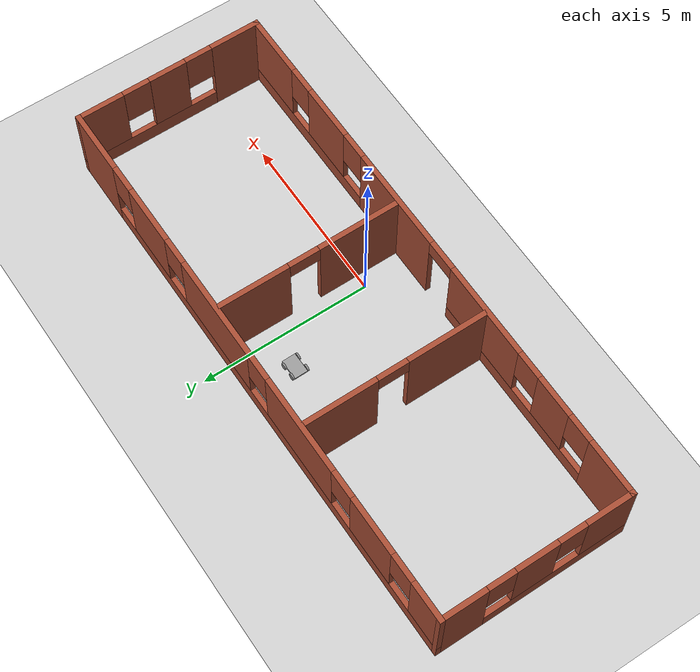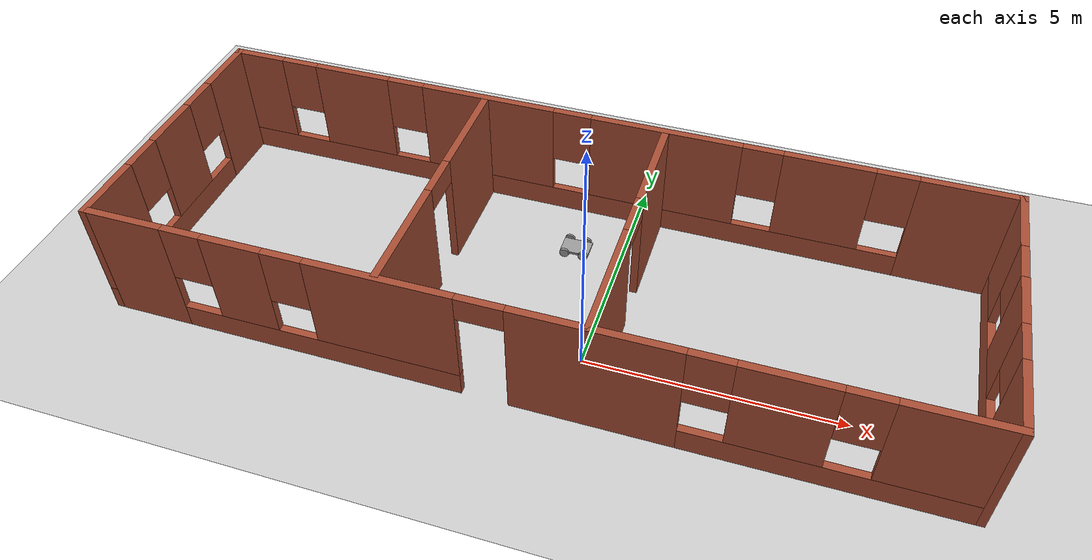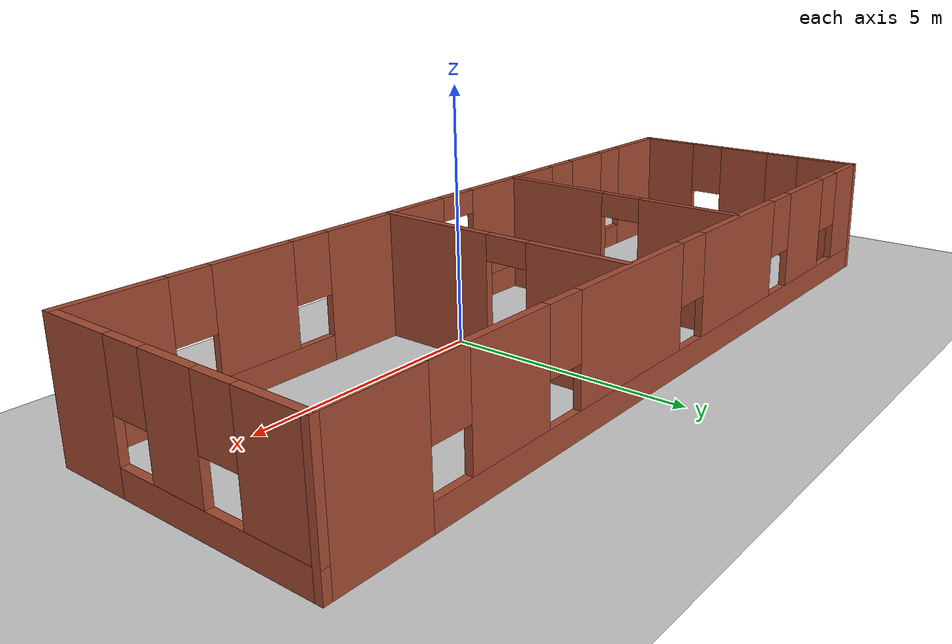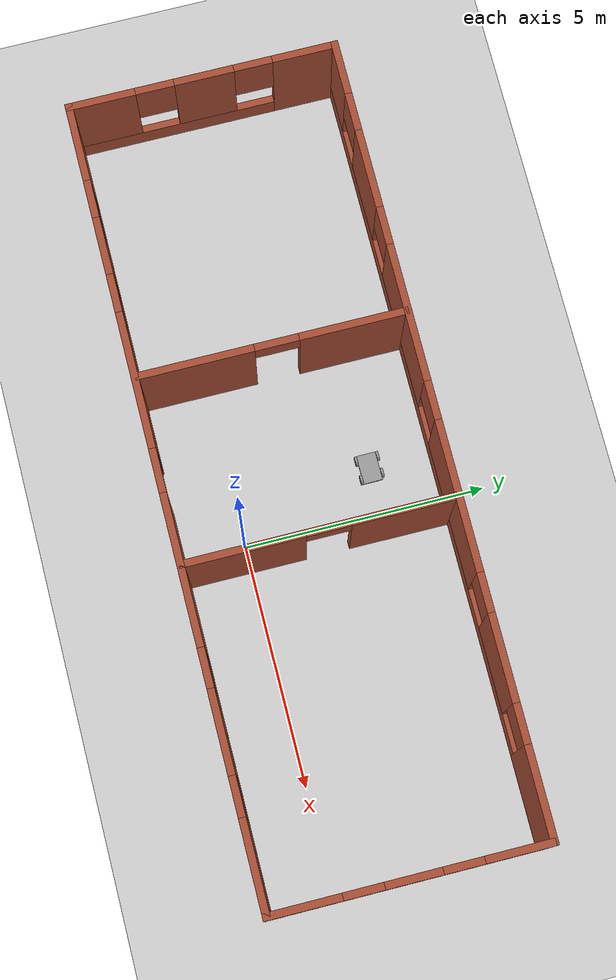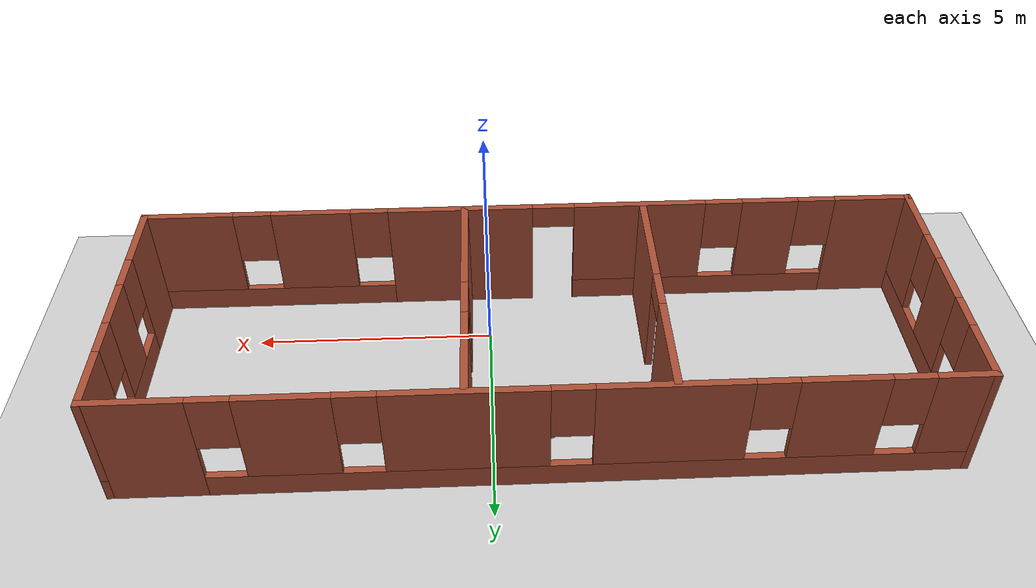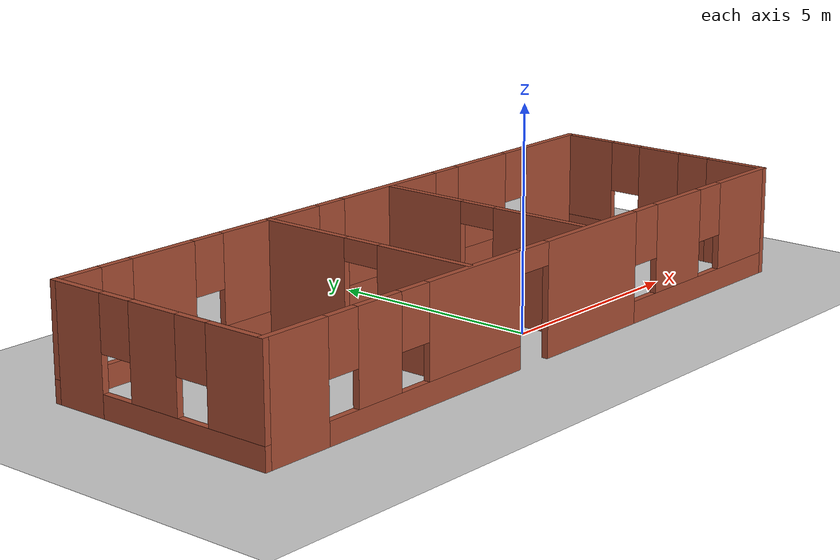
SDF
<sdf version="1.6">
 <world name="default">
  <model name="ground_plane">
   <static>1</static>
   <link name="link">
    <collision name="collision">
     <geometry><plane><normal>0 0 1</normal><size>100 100</size></plane></geometry>
     <surface>
      <contact><collide_bitmask>65535</collide_bitmask></contact>
      <friction><ode><mu>100</mu><mu2>50</mu2></ode></friction>
     </surface>
    </collision>
    <visual name="visual">
     <cast_shadows>0</cast_shadows>
     <geometry><plane><normal>0 0 1</normal><size>100 100</size></plane></geometry>
     <material>
      <script><uri>file://media/materials/scripts/gazebo.material</uri><name>Gazebo/Grey</name></script>
     </material>
    </visual>
   </link>
  </model>
  <model name="Building">
   <pose>-0.93772 1.4252 0 0 -0 0</pose>
   <link name="Wall_1">
    <pose>-8.175 0 0 0 -0 -1.5708</pose>
    <visual name="Wall_1_Visual_0">
     <pose>-2.13501 0 1.25 0 -0 0</pose>
     <geometry><box><size>1.38308 0.15 2.5</size></box></geometry>
     <material>
      <script><uri>file://media/materials/scripts/gazebo.material</uri><name>Gazebo/Bricks</name></script>
      <ambient>0.996078 0.47451 0.0196078 1</ambient>
     </material>
     <meta><layer>0</layer></meta>
    </visual>
    <collision name="Wall_1_Collision_0">
     <geometry><box><size>1.38308 0.15 2.5</size></box></geometry>
     <pose>-2.13501 0 1.25 0 -0 0</pose>
    </collision>
    <visual name="Wall_1_Visual_1">
     <pose>0.691537 0 0.25 0 -0 0</pose>
     <geometry><box><size>4.27001 0.15 0.5</size></box></geometry>
     <material>
      <script><uri>file://media/materials/scripts/gazebo.material</uri><name>Gazebo/Bricks</name></script>
      <ambient>0.996078 0.47451 0.0196078 1</ambient>
     </material>
     <meta><layer>0</layer></meta>
    </visual>
    <collision name="Wall_1_Collision_1">
     <geometry><box><size>4.27001 0.15 0.5</size></box></geometry>
     <pose>0.691537 0 0.25 0 -0 0</pose>
    </collision>
    <visual name="Wall_1_Visual_2">
     <pose>-0.025723 0 1.5 0 -0 0</pose>
     <geometry><box><size>1.23549 0.15 2</size></box></geometry>
     <material>
      <script><uri>file://media/materials/scripts/gazebo.material</uri><name>Gazebo/Bricks</name></script>
      <ambient>0.996078 0.47451 0.0196078 1</ambient>
     </material>
     <meta><layer>0</layer></meta>
    </visual>
    <collision name="Wall_1_Collision_2">
     <geometry><box><size>1.23549 0.15 2</size></box></geometry>
     <pose>-0.025723 0 1.5 0 -0 0</pose>
    </collision>
    <visual name="Wall_1_Visual_3">
     <pose>2.10928 0 1.5 0 -0 0</pose>
     <geometry><box><size>1.43452 0.15 2</size></box></geometry>
     <material>
      <script><uri>file://media/materials/scripts/gazebo.material</uri><name>Gazebo/Bricks</name></script>
      <ambient>0.996078 0.47451 0.0196078 1</ambient>
     </material>
     <meta><layer>0</layer></meta>
    </visual>
    <collision name="Wall_1_Collision_3">
     <geometry><box><size>1.43452 0.15 2</size></box></geometry>
     <pose>2.10928 0 1.5 0 -0 0</pose>
    </collision>
    <visual name="Wall_1_Visual_4">
     <pose>-1.04347 0 1.9 0 -0 0</pose>
     <geometry><box><size>0.8 0.15 1.2</size></box></geometry>
     <material>
      <script><uri>file://media/materials/scripts/gazebo.material</uri><name>Gazebo/Bricks</name></script>
      <ambient>0.996078 0.47451 0.0196078 1</ambient>
     </material>
     <meta><layer>0</layer></meta>
    </visual>
    <collision name="Wall_1_Collision_4">
     <geometry><box><size>0.8 0.15 1.2</size></box></geometry>
     <pose>-1.04347 0 1.9 0 -0 0</pose>
    </collision>
    <visual name="Wall_1_Visual_5">
     <pose>0.992024 0 1.9 0 -0 0</pose>
     <geometry><box><size>0.8 0.15 1.2</size></box></geometry>
     <material>
      <script><uri>file://media/materials/scripts/gazebo.material</uri><name>Gazebo/Bricks</name></script>
      <ambient>0.996078 0.47451 0.0196078 1</ambient>
     </material>
     <meta><layer>0</layer></meta>
    </visual>
    <collision name="Wall_1_Collision_5">
     <geometry><box><size>0.8 0.15 1.2</size></box></geometry>
     <pose>0.992024 0 1.9 0 -0 0</pose>
    </collision>
   </link>
   <link name="Wall_19">
    <pose>-2.40825 0.010743 0 0 -0 -1.5708</pose>
    <visual name="Wall_19_Visual_0">
     <pose>-1.64219 0 1.25 0 -0 0</pose>
     <geometry><box><size>2.21563 0.15 2.5</size></box></geometry>
     <material>
      <script><uri>file://media/materials/scripts/gazebo.material</uri><name>Gazebo/Bricks</name></script>
      <ambient>0.996078 0.47451 0.0196078 1</ambient>
     </material>
     <meta><layer>0</layer></meta>
    </visual>
    <collision name="Wall_19_Collision_0">
     <geometry><box><size>2.21563 0.15 2.5</size></box></geometry>
     <pose>-1.64219 0 1.25 0 -0 0</pose>
    </collision>
    <visual name="Wall_19_Visual_1">
     <pose>1.55781 0 1.25 0 -0 0</pose>
     <geometry><box><size>2.38437 0.15 2.5</size></box></geometry>
     <material>
      <script><uri>file://media/materials/scripts/gazebo.material</uri><name>Gazebo/Bricks</name></script>
      <ambient>0.996078 0.47451 0.0196078 1</ambient>
     </material>
     <meta><layer>0</layer></meta>
    </visual>
    <collision name="Wall_19_Collision_1">
     <geometry><box><size>2.38437 0.15 2.5</size></box></geometry>
     <pose>1.55781 0 1.25 0 -0 0</pose>
    </collision>
    <visual name="Wall_19_Visual_2">
     <pose>-0.084372 0 2.25 0 -0 0</pose>
     <geometry><box><size>0.9 0.15 0.5</size></box></geometry>
     <material>
      <script><uri>file://media/materials/scripts/gazebo.material</uri><name>Gazebo/Bricks</name></script>
      <ambient>0.996078 0.47451 0.0196078 1</ambient>
     </material>
     <meta><layer>0</layer></meta>
    </visual>
    <collision name="Wall_19_Collision_2">
     <geometry><box><size>0.9 0.15 0.5</size></box></geometry>
     <pose>-0.084372 0 2.25 0 -0 0</pose>
    </collision>
   </link>
   <link name="Wall_2">
    <pose>0 -2.75152 0 0 -0 0</pose>
    <visual name="Wall_2_Visual_0">
     <pose>-7.41427 0 1.25 0 -0 0</pose>
     <geometry><box><size>1.67146 0.15 2.5</size></box></geometry>
     <material>
      <script><uri>file://media/materials/scripts/gazebo.material</uri><name>Gazebo/Bricks</name></script>
      <ambient>0.996078 0.47451 0.0196078 1</ambient>
     </material>
     <meta><layer>0</layer></meta>
    </visual>
    <collision name="Wall_2_Collision_0">
     <geometry><box><size>1.67146 0.15 2.5</size></box></geometry>
     <pose>-7.41427 0 1.25 0 -0 0</pose>
    </collision>
    <visual name="Wall_2_Visual_1">
     <pose>1.50269 0 1.25 0 -0 0</pose>
     <geometry><box><size>3.0822 0.15 2.5</size></box></geometry>
     <material>
      <script><uri>file://media/materials/scripts/gazebo.material</uri><name>Gazebo/Bricks</name></script>
      <ambient>0.996078 0.47451 0.0196078 1</ambient>
     </material>
     <meta><layer>0</layer></meta>
    </visual>
    <collision name="Wall_2_Collision_1">
     <geometry><box><size>3.0822 0.15 2.5</size></box></geometry>
     <pose>1.50269 0 1.25 0 -0 0</pose>
    </collision>
    <visual name="Wall_2_Visual_2">
     <pose>-3.75847 0 0.25 0 -0 0</pose>
     <geometry><box><size>5.64013 0.15 0.5</size></box></geometry>
     <material>
      <script><uri>file://media/materials/scripts/gazebo.material</uri><name>Gazebo/Bricks</name></script>
      <ambient>0.996078 0.47451 0.0196078 1</ambient>
     </material>
     <meta><layer>0</layer></meta>
    </visual>
    <collision name="Wall_2_Collision_2">
     <geometry><box><size>5.64013 0.15 0.5</size></box></geometry>
     <pose>-3.75847 0 0.25 0 -0 0</pose>
    </collision>
    <visual name="Wall_2_Visual_3">
     <pose>5.6469 0 0.25 0 -0 0</pose>
     <geometry><box><size>5.20621 0.15 0.5</size></box></geometry>
     <material>
      <script><uri>file://media/materials/scripts/gazebo.material</uri><name>Gazebo/Bricks</name></script>
      <ambient>0.996078 0.47451 0.0196078 1</ambient>
     </material>
     <meta><layer>0</layer></meta>
    </visual>
    <collision name="Wall_2_Collision_3">
     <geometry><box><size>5.20621 0.15 0.5</size></box></geometry>
     <pose>5.6469 0 0.25 0 -0 0</pose>
    </collision>
    <visual name="Wall_2_Visual_4">
     <pose>-5.17236 0 1.5 0 -0 0</pose>
     <geometry><box><size>1.21236 0.15 2</size></box></geometry>
     <material>
      <script><uri>file://media/materials/scripts/gazebo.material</uri><name>Gazebo/Bricks</name></script>
      <ambient>0.996078 0.47451 0.0196078 1</ambient>
     </material>
     <meta><layer>0</layer></meta>
    </visual>
    <collision name="Wall_2_Collision_4">
     <geometry><box><size>1.21236 0.15 2</size></box></geometry>
     <pose>-5.17236 0 1.5 0 -0 0</pose>
    </collision>
    <visual name="Wall_2_Visual_5">
     <pose>-2.35229 0 1.5 0 -0 0</pose>
     <geometry><box><size>2.82777 0.15 2</size></box></geometry>
     <material>
      <script><uri>file://media/materials/scripts/gazebo.material</uri><name>Gazebo/Bricks</name></script>
      <ambient>0.996078 0.47451 0.0196078 1</ambient>
     </material>
     <meta><layer>0</layer></meta>
    </visual>
    <collision name="Wall_2_Collision_5">
     <geometry><box><size>2.82777 0.15 2</size></box></geometry>
     <pose>-2.35229 0 1.5 0 -0 0</pose>
    </collision>
    <visual name="Wall_2_Visual_6">
     <pose>-2.35229 0 1.5 0 -0 0</pose>
     <geometry><box><size>2.82777 0.15 2</size></box></geometry>
     <material>
      <script><uri>file://media/materials/scripts/gazebo.material</uri><name>Gazebo/Bricks</name></script>
      <ambient>0.996078 0.47451 0.0196078 1</ambient>
     </material>
     <meta><layer>0</layer></meta>
    </visual>
    <collision name="Wall_2_Collision_6">
     <geometry><box><size>2.82777 0.15 2</size></box></geometry>
     <pose>-2.35229 0 1.5 0 -0 0</pose>
    </collision>
    <visual name="Wall_2_Visual_7">
     <pose>4.68128 0 1.5 0 -0 0</pose>
     <geometry><box><size>1.67498 0.15 2</size></box></geometry>
     <material>
      <script><uri>file://media/materials/scripts/gazebo.material</uri><name>Gazebo/Bricks</name></script>
      <ambient>0.996078 0.47451 0.0196078 1</ambient>
     </material>
     <meta><layer>0</layer></meta>
    </visual>
    <collision name="Wall_2_Collision_7">
     <geometry><box><size>1.67498 0.15 2</size></box></geometry>
     <pose>4.68128 0 1.5 0 -0 0</pose>
    </collision>
    <visual name="Wall_2_Visual_8">
     <pose>7.28438 0 1.5 0 -0 0</pose>
     <geometry><box><size>1.93123 0.15 2</size></box></geometry>
     <material>
      <script><uri>file://media/materials/scripts/gazebo.material</uri><name>Gazebo/Bricks</name></script>
      <ambient>0.996078 0.47451 0.0196078 1</ambient>
     </material>
     <meta><layer>0</layer></meta>
    </visual>
    <collision name="Wall_2_Collision_8">
     <geometry><box><size>1.93123 0.15 2</size></box></geometry>
     <pose>7.28438 0 1.5 0 -0 0</pose>
    </collision>
    <visual name="Wall_2_Visual_9">
     <pose>-6.17854 0 1.9 0 -0 0</pose>
     <geometry><box><size>0.8 0.15 1.2</size></box></geometry>
     <material>
      <script><uri>file://media/materials/scripts/gazebo.material</uri><name>Gazebo/Bricks</name></script>
      <ambient>0.996078 0.47451 0.0196078 1</ambient>
     </material>
     <meta><layer>0</layer></meta>
    </visual>
    <collision name="Wall_2_Collision_9">
     <geometry><box><size>0.8 0.15 1.2</size></box></geometry>
     <pose>-6.17854 0 1.9 0 -0 0</pose>
    </collision>
    <visual name="Wall_2_Visual_10">
     <pose>3.44379 0 1.9 0 -0 0</pose>
     <geometry><box><size>0.8 0.15 1.2</size></box></geometry>
     <material>
      <script><uri>file://media/materials/scripts/gazebo.material</uri><name>Gazebo/Bricks</name></script>
      <ambient>0.996078 0.47451 0.0196078 1</ambient>
     </material>
     <meta><layer>0</layer></meta>
    </visual>
    <collision name="Wall_2_Collision_10">
     <geometry><box><size>0.8 0.15 1.2</size></box></geometry>
     <pose>3.44379 0 1.9 0 -0 0</pose>
    </collision>
    <visual name="Wall_2_Visual_11">
     <pose>-4.16618 0 1.9 0 -0 0</pose>
     <geometry><box><size>0.8 0.15 1.2</size></box></geometry>
     <material>
      <script><uri>file://media/materials/scripts/gazebo.material</uri><name>Gazebo/Bricks</name></script>
      <ambient>0.996078 0.47451 0.0196078 1</ambient>
     </material>
     <meta><layer>0</layer></meta>
    </visual>
    <collision name="Wall_2_Collision_11">
     <geometry><box><size>0.8 0.15 1.2</size></box></geometry>
     <pose>-4.16618 0 1.9 0 -0 0</pose>
    </collision>
    <visual name="Wall_2_Visual_12">
     <pose>5.91877 0 1.9 0 -0 0</pose>
     <geometry><box><size>0.8 0.15 1.2</size></box></geometry>
     <material>
      <script><uri>file://media/materials/scripts/gazebo.material</uri><name>Gazebo/Bricks</name></script>
      <ambient>0.996078 0.47451 0.0196078 1</ambient>
     </material>
     <meta><layer>0</layer></meta>
    </visual>
    <collision name="Wall_2_Collision_12">
     <geometry><box><size>0.8 0.15 1.2</size></box></geometry>
     <pose>5.91877 0 1.9 0 -0 0</pose>
    </collision>
    <visual name="Wall_2_Visual_13">
     <pose>-0.488409 0 2.25 0 -0 0</pose>
     <geometry><box><size>0.9 0.15 0.5</size></box></geometry>
     <material>
      <script><uri>file://media/materials/scripts/gazebo.material</uri><name>Gazebo/Bricks</name></script>
      <ambient>0.996078 0.47451 0.0196078 1</ambient>
     </material>
     <meta><layer>0</layer></meta>
    </visual>
    <collision name="Wall_2_Collision_13">
     <geometry><box><size>0.9 0.15 0.5</size></box></geometry>
     <pose>-0.488409 0 2.25 0 -0 0</pose>
    </collision>
    <visual name="Wall_2_Visual_14">
     <pose>-0.488409 0 2.25 0 -0 0</pose>
     <geometry><box><size>0.9 0.15 0.5</size></box></geometry>
     <material>
      <script><uri>file://media/materials/scripts/gazebo.material</uri><name>Gazebo/Bricks</name></script>
      <ambient>0.996078 0.47451 0.0196078 1</ambient>
     </material>
     <meta><layer>0</layer></meta>
    </visual>
    <collision name="Wall_2_Collision_14">
     <geometry><box><size>0.9 0.15 0.5</size></box></geometry>
     <pose>-0.488409 0 2.25 0 -0 0</pose>
    </collision>
   </link>
   <link name="Wall_22">
    <pose>1.4083 -0.035518 0 0 -0 -1.5708</pose>
    <visual name="Wall_22_Visual_0">
     <pose>-1.70001 0 1.25 0 -0 0</pose>
     <geometry><box><size>2.09998 0.15 2.5</size></box></geometry>
     <material>
      <script><uri>file://media/materials/scripts/gazebo.material</uri><name>Gazebo/Bricks</name></script>
      <ambient>0.996078 0.47451 0.0196078 1</ambient>
     </material>
     <meta><layer>0</layer></meta>
    </visual>
    <collision name="Wall_22_Collision_0">
     <geometry><box><size>2.09998 0.15 2.5</size></box></geometry>
     <pose>-1.70001 0 1.25 0 -0 0</pose>
    </collision>
    <visual name="Wall_22_Visual_1">
     <pose>1.49999 0 1.25 0 -0 0</pose>
     <geometry><box><size>2.50002 0.15 2.5</size></box></geometry>
     <material>
      <script><uri>file://media/materials/scripts/gazebo.material</uri><name>Gazebo/Bricks</name></script>
      <ambient>0.996078 0.47451 0.0196078 1</ambient>
     </material>
     <meta><layer>0</layer></meta>
    </visual>
    <collision name="Wall_22_Collision_1">
     <geometry><box><size>2.50002 0.15 2.5</size></box></geometry>
     <pose>1.49999 0 1.25 0 -0 0</pose>
    </collision>
    <visual name="Wall_22_Visual_2">
     <pose>-0.200025 0 2.25 0 -0 0</pose>
     <geometry><box><size>0.9 0.15 0.5</size></box></geometry>
     <material>
      <script><uri>file://media/materials/scripts/gazebo.material</uri><name>Gazebo/Bricks</name></script>
      <ambient>0.996078 0.47451 0.0196078 1</ambient>
     </material>
     <meta><layer>0</layer></meta>
    </visual>
    <collision name="Wall_22_Collision_2">
     <geometry><box><size>0.9 0.15 0.5</size></box></geometry>
     <pose>-0.200025 0 2.25 0 -0 0</pose>
    </collision>
   </link>
   <link name="Wall_3">
    <pose>8.175 0 0 0 -0 1.5708</pose>
    <visual name="Wall_3_Visual_0">
     <pose>-2.06302 0 1.25 0 -0 0</pose>
     <geometry><box><size>1.52704 0.15 2.5</size></box></geometry>
     <material>
      <script><uri>file://media/materials/scripts/gazebo.material</uri><name>Gazebo/Bricks</name></script>
      <ambient>0.996078 0.47451 0.0196078 1</ambient>
     </material>
     <meta><layer>0</layer></meta>
    </visual>
    <collision name="Wall_3_Collision_0">
     <geometry><box><size>1.52704 0.15 2.5</size></box></geometry>
     <pose>-2.06302 0 1.25 0 -0 0</pose>
    </collision>
    <visual name="Wall_3_Visual_1">
     <pose>0.763522 0 0.25 0 -0 0</pose>
     <geometry><box><size>4.12605 0.15 0.5</size></box></geometry>
     <material>
      <script><uri>file://media/materials/scripts/gazebo.material</uri><name>Gazebo/Bricks</name></script>
      <ambient>0.996078 0.47451 0.0196078 1</ambient>
     </material>
     <meta><layer>0</layer></meta>
    </visual>
    <collision name="Wall_3_Collision_1">
     <geometry><box><size>4.12605 0.15 0.5</size></box></geometry>
     <pose>0.763522 0 0.25 0 -0 0</pose>
    </collision>
    <visual name="Wall_3_Visual_2">
     <pose>0.060419 0 1.5 0 -0 0</pose>
     <geometry><box><size>1.11984 0.15 2</size></box></geometry>
     <material>
      <script><uri>file://media/materials/scripts/gazebo.material</uri><name>Gazebo/Bricks</name></script>
      <ambient>0.996078 0.47451 0.0196078 1</ambient>
     </material>
     <meta><layer>0</layer></meta>
    </visual>
    <collision name="Wall_3_Collision_2">
     <geometry><box><size>1.11984 0.15 2</size></box></geometry>
     <pose>0.060419 0 1.5 0 -0 0</pose>
    </collision>
    <visual name="Wall_3_Visual_3">
     <pose>2.12344 0 1.5 0 -0 0</pose>
     <geometry><box><size>1.40621 0.15 2</size></box></geometry>
     <material>
      <script><uri>file://media/materials/scripts/gazebo.material</uri><name>Gazebo/Bricks</name></script>
      <ambient>0.996078 0.47451 0.0196078 1</ambient>
     </material>
     <meta><layer>0</layer></meta>
    </visual>
    <collision name="Wall_3_Collision_3">
     <geometry><box><size>1.40621 0.15 2</size></box></geometry>
     <pose>2.12344 0 1.5 0 -0 0</pose>
    </collision>
    <visual name="Wall_3_Visual_4">
     <pose>-0.899501 0 1.9 0 -0 0</pose>
     <geometry><box><size>0.8 0.15 1.2</size></box></geometry>
     <material>
      <script><uri>file://media/materials/scripts/gazebo.material</uri><name>Gazebo/Bricks</name></script>
      <ambient>0.996078 0.47451 0.0196078 1</ambient>
     </material>
     <meta><layer>0</layer></meta>
    </visual>
    <collision name="Wall_3_Collision_4">
     <geometry><box><size>0.8 0.15 1.2</size></box></geometry>
     <pose>-0.899501 0 1.9 0 -0 0</pose>
    </collision>
    <visual name="Wall_3_Visual_5">
     <pose>1.02034 0 1.9 0 -0 0</pose>
     <geometry><box><size>0.8 0.15 1.2</size></box></geometry>
     <material>
      <script><uri>file://media/materials/scripts/gazebo.material</uri><name>Gazebo/Bricks</name></script>
      <ambient>0.996078 0.47451 0.0196078 1</ambient>
     </material>
     <meta><layer>0</layer></meta>
    </visual>
    <collision name="Wall_3_Collision_5">
     <geometry><box><size>0.8 0.15 1.2</size></box></geometry>
     <pose>1.02034 0 1.9 0 -0 0</pose>
    </collision>
   </link>
   <link name="Wall_4">
    <pose>0 2.75152 0 0 -0 3.14159</pose>
    <visual name="Wall_4_Visual_0">
     <pose>-7.28438 0 1.25 0 -0 0</pose>
     <geometry><box><size>1.93123 0.15 2.5</size></box></geometry>
     <material>
      <script><uri>file://media/materials/scripts/gazebo.material</uri><name>Gazebo/Bricks</name></script>
      <ambient>0.996078 0.47451 0.0196078 1</ambient>
     </material>
     <meta><layer>0</layer></meta>
    </visual>
    <collision name="Wall_4_Collision_0">
     <geometry><box><size>1.93123 0.15 2.5</size></box></geometry>
     <pose>-7.28438 0 1.25 0 -0 0</pose>
    </collision>
    <visual name="Wall_4_Visual_1">
     <pose>0.965616 0 0.25 0 -0 0</pose>
     <geometry><box><size>14.5688 0.15 0.5</size></box></geometry>
     <material>
      <script><uri>file://media/materials/scripts/gazebo.material</uri><name>Gazebo/Bricks</name></script>
      <ambient>0.996078 0.47451 0.0196078 1</ambient>
     </material>
     <meta><layer>0</layer></meta>
    </visual>
    <collision name="Wall_4_Collision_1">
     <geometry><box><size>14.5688 0.15 0.5</size></box></geometry>
     <pose>0.965616 0 0.25 0 -0 0</pose>
    </collision>
    <visual name="Wall_4_Visual_2">
     <pose>-4.63502 0 1.5 0 -0 0</pose>
     <geometry><box><size>1.7675 0.15 2</size></box></geometry>
     <material>
      <script><uri>file://media/materials/scripts/gazebo.material</uri><name>Gazebo/Bricks</name></script>
      <ambient>0.996078 0.47451 0.0196078 1</ambient>
     </material>
     <meta><layer>0</layer></meta>
    </visual>
    <collision name="Wall_4_Collision_2">
     <geometry><box><size>1.7675 0.15 2</size></box></geometry>
     <pose>-4.63502 0 1.5 0 -0 0</pose>
    </collision>
    <visual name="Wall_4_Visual_3">
     <pose>-1.4083 0 1.5 0 -0 0</pose>
     <geometry><box><size>3.08594 0.15 2</size></box></geometry>
     <material>
      <script><uri>file://media/materials/scripts/gazebo.material</uri><name>Gazebo/Bricks</name></script>
      <ambient>0.996078 0.47451 0.0196078 1</ambient>
     </material>
     <meta><layer>0</layer></meta>
    </visual>
    <collision name="Wall_4_Collision_3">
     <geometry><box><size>3.08594 0.15 2</size></box></geometry>
     <pose>-1.4083 0 1.5 0 -0 0</pose>
    </collision>
    <visual name="Wall_4_Visual_4">
     <pose>2.37355 0 1.5 0 -0 0</pose>
     <geometry><box><size>2.87777 0.15 2</size></box></geometry>
     <material>
      <script><uri>file://media/materials/scripts/gazebo.material</uri><name>Gazebo/Bricks</name></script>
      <ambient>0.996078 0.47451 0.0196078 1</ambient>
     </material>
     <meta><layer>0</layer></meta>
    </visual>
    <collision name="Wall_4_Collision_4">
     <geometry><box><size>2.87777 0.15 2</size></box></geometry>
     <pose>2.37355 0 1.5 0 -0 0</pose>
    </collision>
    <visual name="Wall_4_Visual_5">
     <pose>5.44993 0 1.5 0 -0 0</pose>
     <geometry><box><size>1.67498 0.15 2</size></box></geometry>
     <material>
      <script><uri>file://media/materials/scripts/gazebo.material</uri><name>Gazebo/Bricks</name></script>
      <ambient>0.996078 0.47451 0.0196078 1</ambient>
     </material>
     <meta><layer>0</layer></meta>
    </visual>
    <collision name="Wall_4_Collision_5">
     <geometry><box><size>1.67498 0.15 2</size></box></geometry>
     <pose>5.44993 0 1.5 0 -0 0</pose>
    </collision>
    <visual name="Wall_4_Visual_6">
     <pose>7.66871 0 1.5 0 -0 0</pose>
     <geometry><box><size>1.16259 0.15 2</size></box></geometry>
     <material>
      <script><uri>file://media/materials/scripts/gazebo.material</uri><name>Gazebo/Bricks</name></script>
      <ambient>0.996078 0.47451 0.0196078 1</ambient>
     </material>
     <meta><layer>0</layer></meta>
    </visual>
    <collision name="Wall_4_Collision_6">
     <geometry><box><size>1.16259 0.15 2</size></box></geometry>
     <pose>7.66871 0 1.5 0 -0 0</pose>
    </collision>
    <visual name="Wall_4_Visual_7">
     <pose>-5.91877 0 1.9 0 -0 0</pose>
     <geometry><box><size>0.8 0.15 1.2</size></box></geometry>
     <material>
      <script><uri>file://media/materials/scripts/gazebo.material</uri><name>Gazebo/Bricks</name></script>
      <ambient>0.996078 0.47451 0.0196078 1</ambient>
     </material>
     <meta><layer>0</layer></meta>
    </visual>
    <collision name="Wall_4_Collision_7">
     <geometry><box><size>0.8 0.15 1.2</size></box></geometry>
     <pose>-5.91877 0 1.9 0 -0 0</pose>
    </collision>
    <visual name="Wall_4_Visual_8">
     <pose>-3.35127 0 1.9 0 -0 0</pose>
     <geometry><box><size>0.8 0.15 1.2</size></box></geometry>
     <material>
      <script><uri>file://media/materials/scripts/gazebo.material</uri><name>Gazebo/Bricks</name></script>
      <ambient>0.996078 0.47451 0.0196078 1</ambient>
     </material>
     <meta><layer>0</layer></meta>
    </visual>
    <collision name="Wall_4_Collision_8">
     <geometry><box><size>0.8 0.15 1.2</size></box></geometry>
     <pose>-3.35127 0 1.9 0 -0 0</pose>
    </collision>
    <visual name="Wall_4_Visual_9">
     <pose>0.53467 0 1.9 0 -0 0</pose>
     <geometry><box><size>0.8 0.15 1.2</size></box></geometry>
     <material>
      <script><uri>file://media/materials/scripts/gazebo.material</uri><name>Gazebo/Bricks</name></script>
      <ambient>0.996078 0.47451 0.0196078 1</ambient>
     </material>
     <meta><layer>0</layer></meta>
    </visual>
    <collision name="Wall_4_Collision_9">
     <geometry><box><size>0.8 0.15 1.2</size></box></geometry>
     <pose>0.53467 0 1.9 0 -0 0</pose>
    </collision>
    <visual name="Wall_4_Visual_10">
     <pose>4.21244 0 1.9 0 -0 0</pose>
     <geometry><box><size>0.8 0.15 1.2</size></box></geometry>
     <material>
      <script><uri>file://media/materials/scripts/gazebo.material</uri><name>Gazebo/Bricks</name></script>
      <ambient>0.996078 0.47451 0.0196078 1</ambient>
     </material>
     <meta><layer>0</layer></meta>
    </visual>
    <collision name="Wall_4_Collision_10">
     <geometry><box><size>0.8 0.15 1.2</size></box></geometry>
     <pose>4.21244 0 1.9 0 -0 0</pose>
    </collision>
    <visual name="Wall_4_Visual_11">
     <pose>6.68741 0 1.9 0 -0 0</pose>
     <geometry><box><size>0.8 0.15 1.2</size></box></geometry>
     <material>
      <script><uri>file://media/materials/scripts/gazebo.material</uri><name>Gazebo/Bricks</name></script>
      <ambient>0.996078 0.47451 0.0196078 1</ambient>
     </material>
     <meta><layer>0</layer></meta>
    </visual>
    <collision name="Wall_4_Collision_11">
     <geometry><box><size>0.8 0.15 1.2</size></box></geometry>
     <pose>6.68741 0 1.9 0 -0 0</pose>
    </collision>
   </link>
   <static>1</static>
  </model>
  <model name="robot_clone">
   <link name="link_5">
    <inertial>
     <mass>1</mass>
     <inertia>
      <ixx>0.166667</ixx>
      <ixy>0</ixy>
      <ixz>0</ixz>
      <iyy>0.166667</iyy>
      <iyz>0</iyz>
      <izz>0.166667</izz>
     </inertia>
    </inertial>
    <pose>0.039875 -0.14612 -0.029 0 -0 0</pose>
    <visual name="visual">
     <geometry><box><size>0.6 0.4 0.05</size></box></geometry>
     <material>
      <lighting>1</lighting>
      <script><uri>file://media/materials/scripts/gazebo.material</uri><name>Gazebo/Grey</name></script>
      <shader type="pixel"><normal_map>__default__</normal_map></shader>
      <ambient>0.3 0.3 0.3 1</ambient>
      <diffuse>0.7 0.7 0.7 1</diffuse>
      <specular>0.01 0.01 0.01 1</specular>
      <emissive>0 0 0 1</emissive>
     </material>
    </visual>
    <collision name="collision">
     <geometry><box><size>0.6 0.4 0.05</size></box></geometry>
     <surface>
      <friction>
       <ode><mu>1</mu><mu2>1</mu2><fdir1>0 0 0</fdir1><slip1>0</slip1><slip2>0</slip2></ode>
       <torsional>
        <coefficient>1</coefficient>
        <patch_radius>0</patch_radius>
        <surface_radius>0</surface_radius>
        <use_patch_radius>1</use_patch_radius>
        <ode><slip>0</slip></ode>
       </torsional>
      </friction>
      <bounce><restitution_coefficient>0</restitution_coefficient><threshold>1e+06</threshold></bounce>
      <contact>
       <collide_without_contact>0</collide_without_contact>
       <collide_without_contact_bitmask>1</collide_without_contact_bitmask>
       <collide_bitmask>1</collide_bitmask>
       <ode>
        <soft_cfm>0</soft_cfm>
        <soft_erp>0.2</soft_erp>
        <kp>1e+13</kp>
        <kd>1</kd>
        <max_vel>0.01</max_vel>
        <min_depth>0</min_depth>
       </ode>
       <bullet>
        <split_impulse>1</split_impulse>
        <split_impulse_penetration_threshold>-0.01</split_impulse_penetration_threshold>
        <soft_cfm>0</soft_cfm>
        <soft_erp>0.2</soft_erp>
        <kp>1e+13</kp>
        <kd>1</kd>
       </bullet>
      </contact>
     </surface>
    </collision>
   </link>
   <link name="link_6">
    <inertial>
     <mass>1</mass>
     <inertia><ixx>0.145833</ixx><ixy>0</ixy><ixz>0</ixz><iyy>0.145833</iyy><iyz>0</iyz><izz>0.125</izz></inertia>
    </inertial>
    <pose>0.199875 0.078889 -0.029 0 -0 0</pose>
    <visual name="visual">
     <pose>0 0 0 1.5707 -0 0</pose>
     <geometry><cylinder><radius>0.1</radius><length>0.05</length></cylinder></geometry>
     <material>
      <lighting>1</lighting>
      <script><uri>file://media/materials/scripts/gazebo.material</uri><name>Gazebo/Grey</name></script>
      <shader type="pixel"><normal_map>__default__</normal_map></shader>
      <ambient>0.3 0.3 0.3 1</ambient>
      <diffuse>0.7 0.7 0.7 1</diffuse>
      <specular>0.01 0.01 0.01 1</specular>
      <emissive>0 0 0 1</emissive>
     </material>
    </visual>
    <collision name="collision">
     <pose>0 0 0 1.5707 -0 0</pose>
     <geometry><cylinder><radius>0.1</radius><length>0.05</length></cylinder></geometry>
     <surface>
      <friction>
       <ode><mu>1</mu><mu2>1</mu2><fdir1>0 0 0</fdir1><slip1>0</slip1><slip2>0</slip2></ode>
       <torsional>
        <coefficient>1</coefficient>
        <patch_radius>0</patch_radius>
        <surface_radius>0</surface_radius>
        <use_patch_radius>1</use_patch_radius>
        <ode><slip>0</slip></ode>
       </torsional>
      </friction>
      <bounce><restitution_coefficient>0</restitution_coefficient><threshold>1e+06</threshold></bounce>
      <contact>
       <collide_without_contact>0</collide_without_contact>
       <collide_without_contact_bitmask>1</collide_without_contact_bitmask>
       <collide_bitmask>1</collide_bitmask>
       <ode>
        <soft_cfm>0</soft_cfm>
        <soft_erp>0.2</soft_erp>
        <kp>1e+13</kp>
        <kd>1</kd>
        <max_vel>0.01</max_vel>
        <min_depth>0</min_depth>
       </ode>
       <bullet>
        <split_impulse>1</split_impulse>
        <split_impulse_penetration_threshold>-0.01</split_impulse_penetration_threshold>
        <soft_cfm>0</soft_cfm>
        <soft_erp>0.2</soft_erp>
        <kp>1e+13</kp>
        <kd>1</kd>
       </bullet>
      </contact>
     </surface>
    </collision>
   </link>
   <link name="link_6_clone">
    <inertial>
     <mass>1</mass>
     <inertia><ixx>0.145833</ixx><ixy>0</ixy><ixz>0</ixz><iyy>0.145833</iyy><iyz>0</iyz><izz>0.125</izz></inertia>
    </inertial>
    <pose>-0.160125 -0.371129 -0.029 0 -0 0</pose>
    <visual name="visual">
     <pose>0 0 0 1.5707 -0 0</pose>
     <geometry><cylinder><radius>0.1</radius><length>0.05</length></cylinder></geometry>
     <material>
      <lighting>1</lighting>
      <script><uri>file://media/materials/scripts/gazebo.material</uri><name>Gazebo/Grey</name></script>
      <shader type="pixel"><normal_map>__default__</normal_map></shader>
      <ambient>0.3 0.3 0.3 1</ambient>
      <diffuse>0.7 0.7 0.7 1</diffuse>
      <specular>0.01 0.01 0.01 1</specular>
      <emissive>0 0 0 1</emissive>
     </material>
    </visual>
    <collision name="collision">
     <pose>0 0 0 1.5707 -0 0</pose>
     <geometry><cylinder><radius>0.1</radius><length>0.05</length></cylinder></geometry>
     <surface>
      <friction>
       <ode><mu>1</mu><mu2>1</mu2><fdir1>0 0 0</fdir1><slip1>0</slip1><slip2>0</slip2></ode>
       <torsional>
        <coefficient>1</coefficient>
        <patch_radius>0</patch_radius>
        <surface_radius>0</surface_radius>
        <use_patch_radius>1</use_patch_radius>
        <ode><slip>0</slip></ode>
       </torsional>
      </friction>
      <bounce><restitution_coefficient>0</restitution_coefficient><threshold>1e+06</threshold></bounce>
      <contact>
       <collide_without_contact>0</collide_without_contact>
       <collide_without_contact_bitmask>1</collide_without_contact_bitmask>
       <collide_bitmask>1</collide_bitmask>
       <ode>
        <soft_cfm>0</soft_cfm>
        <soft_erp>0.2</soft_erp>
        <kp>1e+13</kp>
        <kd>1</kd>
        <max_vel>0.01</max_vel>
        <min_depth>0</min_depth>
       </ode>
       <bullet>
        <split_impulse>1</split_impulse>
        <split_impulse_penetration_threshold>-0.01</split_impulse_penetration_threshold>
        <soft_cfm>0</soft_cfm>
        <soft_erp>0.2</soft_erp>
        <kp>1e+13</kp>
        <kd>1</kd>
       </bullet>
      </contact>
     </surface>
    </collision>
   </link>
   <link name="link_6_clone_0">
    <inertial>
     <mass>1</mass>
     <inertia><ixx>0.145833</ixx><ixy>0</ixy><ixz>0</ixz><iyy>0.145833</iyy><iyz>0</iyz><izz>0.125</izz></inertia>
    </inertial>
    <pose>-0.160125 0.078889 -0.029 0 -0 0</pose>
    <visual name="visual">
     <pose>0 0 0 1.5707 -0 0</pose>
     <geometry><cylinder><radius>0.1</radius><length>0.05</length></cylinder></geometry>
     <material>
      <lighting>1</lighting>
      <script><uri>file://media/materials/scripts/gazebo.material</uri><name>Gazebo/Grey</name></script>
      <shader type="pixel"><normal_map>__default__</normal_map></shader>
      <ambient>0.3 0.3 0.3 1</ambient>
      <diffuse>0.7 0.7 0.7 1</diffuse>
      <specular>0.01 0.01 0.01 1</specular>
      <emissive>0 0 0 1</emissive>
     </material>
    </visual>
    <collision name="collision">
     <pose>0 0 0 1.5707 -0 0</pose>
     <geometry><cylinder><radius>0.1</radius><length>0.05</length></cylinder></geometry>
     <surface>
      <friction>
       <ode><mu>1</mu><mu2>1</mu2><fdir1>0 0 0</fdir1><slip1>0</slip1><slip2>0</slip2></ode>
       <torsional>
        <coefficient>1</coefficient>
        <patch_radius>0</patch_radius>
        <surface_radius>0</surface_radius>
        <use_patch_radius>1</use_patch_radius>
        <ode><slip>0</slip></ode>
       </torsional>
      </friction>
      <bounce><restitution_coefficient>0</restitution_coefficient><threshold>1e+06</threshold></bounce>
      <contact>
       <collide_without_contact>0</collide_without_contact>
       <collide_without_contact_bitmask>1</collide_without_contact_bitmask>
       <collide_bitmask>1</collide_bitmask>
       <ode>
        <soft_cfm>0</soft_cfm>
        <soft_erp>0.2</soft_erp>
        <kp>1e+13</kp>
        <kd>1</kd>
        <max_vel>0.01</max_vel>
        <min_depth>0</min_depth>
       </ode>
       <bullet>
        <split_impulse>1</split_impulse>
        <split_impulse_penetration_threshold>-0.01</split_impulse_penetration_threshold>
        <soft_cfm>0</soft_cfm>
        <soft_erp>0.2</soft_erp>
        <kp>1e+13</kp>
        <kd>1</kd>
       </bullet>
      </contact>
     </surface>
    </collision>
   </link>
   <link name="link_6_clone_clone">
    <inertial>
     <mass>1</mass>
     <inertia><ixx>0.145833</ixx><ixy>0</ixy><ixz>0</ixz><iyy>0.145833</iyy><iyz>0</iyz><izz>0.125</izz></inertia>
    </inertial>
    <pose>0.239875 -0.371129 -0.029 0 -0 0</pose>
    <visual name="visual">
     <pose>0 0 0 1.5707 -0 0</pose>
     <geometry><cylinder><radius>0.1</radius><length>0.05</length></cylinder></geometry>
     <material>
      <lighting>1</lighting>
      <script><uri>file://media/materials/scripts/gazebo.material</uri><name>Gazebo/Grey</name></script>
      <shader type="pixel"><normal_map>__default__</normal_map></shader>
      <ambient>0.3 0.3 0.3 1</ambient>
      <diffuse>0.7 0.7 0.7 1</diffuse>
      <specular>0.01 0.01 0.01 1</specular>
      <emissive>0 0 0 1</emissive>
     </material>
    </visual>
    <collision name="collision">
     <pose>0 0 0 1.5707 -0 0</pose>
     <geometry><cylinder><radius>0.1</radius><length>0.05</length></cylinder></geometry>
     <surface>
      <friction>
       <ode><mu>1</mu><mu2>1</mu2><fdir1>0 0 0</fdir1><slip1>0</slip1><slip2>0</slip2></ode>
       <torsional>
        <coefficient>1</coefficient>
        <patch_radius>0</patch_radius>
        <surface_radius>0</surface_radius>
        <use_patch_radius>1</use_patch_radius>
        <ode><slip>0</slip></ode>
       </torsional>
      </friction>
      <bounce><restitution_coefficient>0</restitution_coefficient><threshold>1e+06</threshold></bounce>
      <contact>
       <collide_without_contact>0</collide_without_contact>
       <collide_without_contact_bitmask>1</collide_without_contact_bitmask>
       <collide_bitmask>1</collide_bitmask>
       <ode>
        <soft_cfm>0</soft_cfm>
        <soft_erp>0.2</soft_erp>
        <kp>1e+13</kp>
        <kd>1</kd>
        <max_vel>0.01</max_vel>
        <min_depth>0</min_depth>
       </ode>
       <bullet>
        <split_impulse>1</split_impulse>
        <split_impulse_penetration_threshold>-0.01</split_impulse_penetration_threshold>
        <soft_cfm>0</soft_cfm>
        <soft_erp>0.2</soft_erp>
        <kp>1e+13</kp>
        <kd>1</kd>
       </bullet>
      </contact>
     </surface>
    </collision>
   </link>
   <joint name="link_5_JOINT_10" type="revolute">
    <parent>link_5</parent>
    <child>link_6_clone_clone</child>
    <axis>
     <xyz>0 -1 0</xyz>
     <limit>
      <lower>-1.79769e+308</lower>
      <upper>1.79769e+308</upper>
      <effort>-1</effort>
      <velocity>-1</velocity>
     </limit>
     <dynamics>
      <spring_reference>0</spring_reference>
      <spring_stiffness>0</spring_stiffness>
      <damping>0</damping>
     </dynamics>
     <use_parent_model_frame>0</use_parent_model_frame>
    </axis>
    <physics>
     <ode><limit><cfm>0</cfm><erp>0.2</erp></limit><suspension><cfm>0</cfm><erp>0.2</erp></suspension></ode>
    </physics>
   </joint>
   <joint name="link_5_JOINT_7" type="revolute">
    <parent>link_5</parent>
    <child>link_6_clone_0</child>
    <axis>
     <xyz>0 1 0</xyz>
     <limit>
      <lower>-1.79769e+308</lower>
      <upper>1.79769e+308</upper>
      <effort>-1</effort>
      <velocity>-1</velocity>
     </limit>
     <dynamics>
      <spring_reference>0</spring_reference>
      <spring_stiffness>0</spring_stiffness>
      <damping>0</damping>
      <friction>0</friction>
     </dynamics>
     <use_parent_model_frame>0</use_parent_model_frame>
    </axis>
    <physics>
     <ode><limit><cfm>0</cfm><erp>0.2</erp></limit><suspension><cfm>0</cfm><erp>0.2</erp></suspension></ode>
    </physics>
   </joint>
   <joint name="link_5_JOINT_8" type="revolute">
    <parent>link_5</parent>
    <child>link_6</child>
    <axis>
     <xyz>0 1 0</xyz>
     <limit>
      <lower>-1.79769e+308</lower>
      <upper>1.79769e+308</upper>
      <effort>-1</effort>
      <velocity>-1</velocity>
     </limit>
     <dynamics>
      <spring_reference>0</spring_reference>
      <spring_stiffness>0</spring_stiffness>
      <damping>0</damping>
      <friction>0</friction>
     </dynamics>
     <use_parent_model_frame>0</use_parent_model_frame>
    </axis>
    <physics>
     <ode><limit><cfm>0</cfm><erp>0.2</erp></limit><suspension><cfm>0</cfm><erp>0.2</erp></suspension></ode>
    </physics>
   </joint>
   <joint name="link_5_JOINT_9" type="revolute">
    <parent>link_5</parent>
    <child>link_6_clone</child>
    <axis>
     <xyz>0 -1 0</xyz>
     <limit>
      <lower>-1.79769e+308</lower>
      <upper>1.79769e+308</upper>
      <effort>-1</effort>
      <velocity>-1</velocity>
     </limit>
     <dynamics>
      <spring_reference>0</spring_reference>
      <spring_stiffness>0</spring_stiffness>
      <damping>0</damping>
     </dynamics>
     <use_parent_model_frame>0</use_parent_model_frame>
    </axis>
    <physics>
     <ode><limit><cfm>0</cfm><erp>0.2</erp></limit><suspension><cfm>0</cfm><erp>0.2</erp></suspension></ode>
    </physics>
   </joint>
   <static>0</static>
   <pose>-1.00286 2.9972 0.129002 0 -0 0.011428</pose>
  </model>
 </world>
</sdf>
